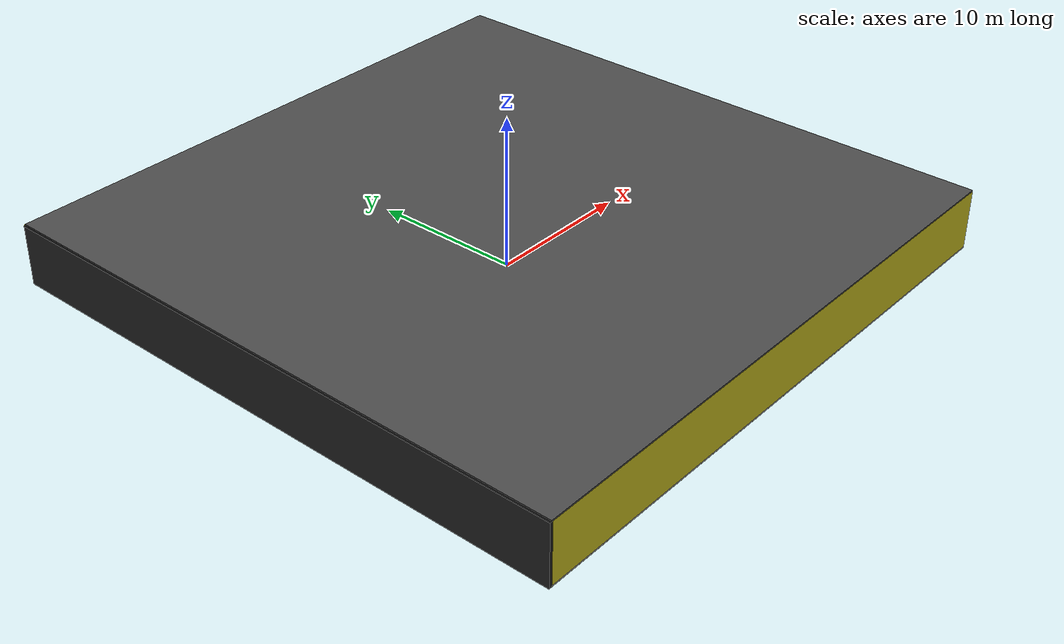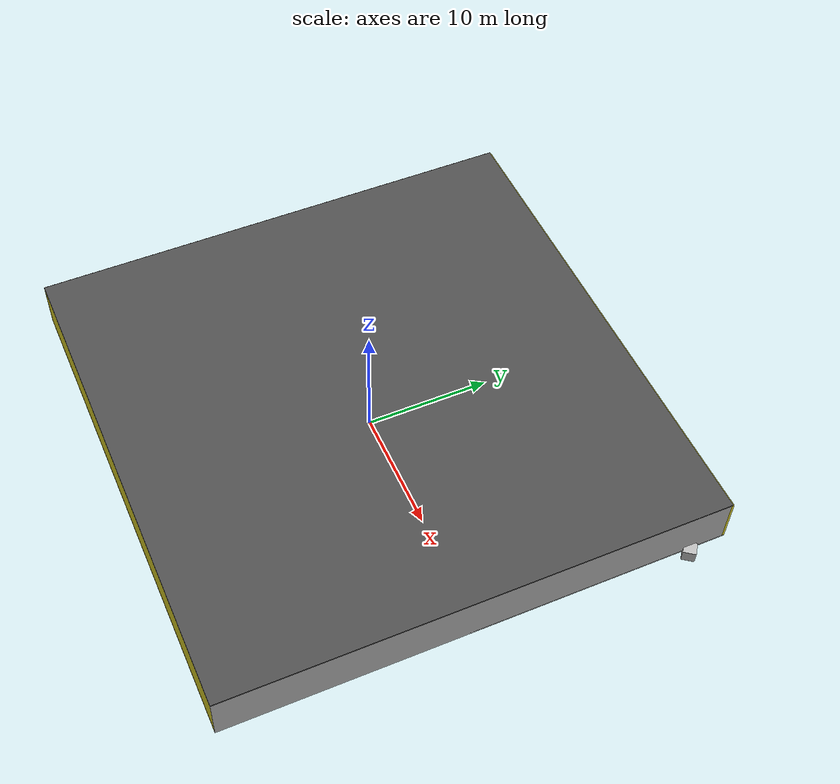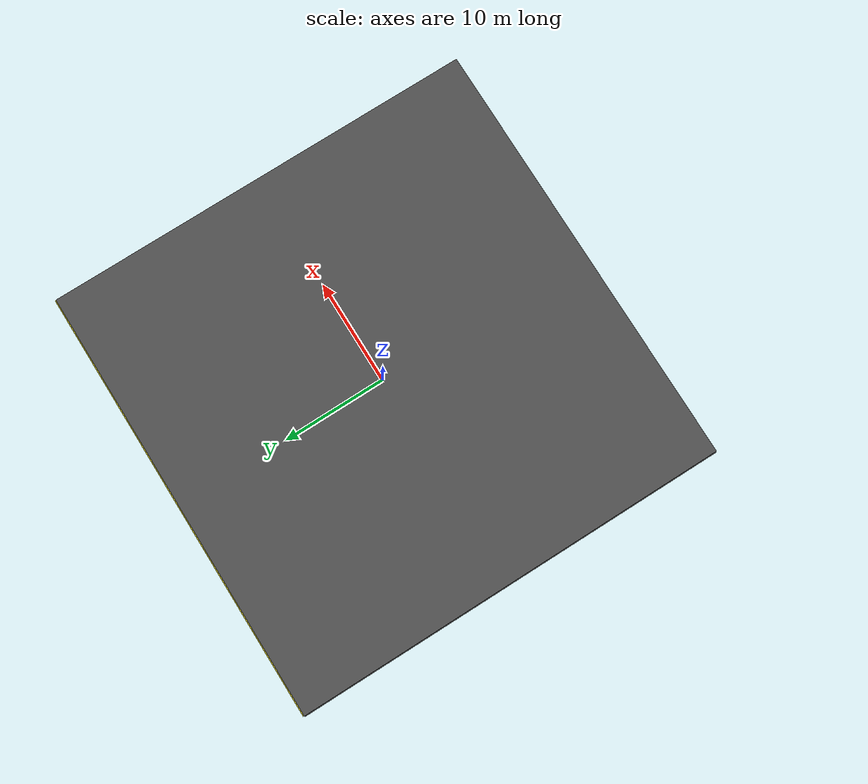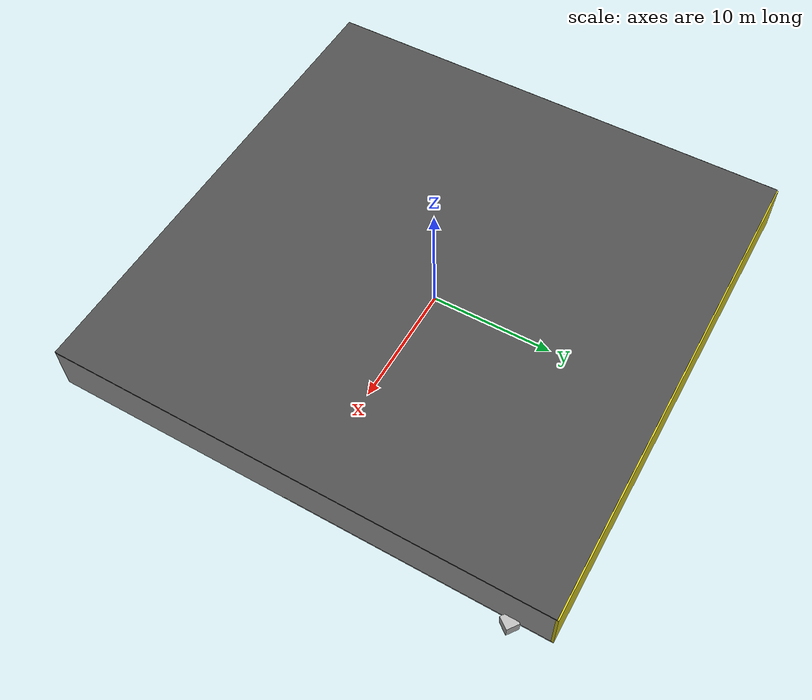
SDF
<sdf version="1.4">
 <world name="default">
  <physics type="ode">
   <max_step_size>0.001</max_step_size>
   <real_time_factor>1</real_time_factor>
   <real_time_update_rate>1000</real_time_update_rate>
   <gravity>0 0 -9.8</gravity>
  </physics>
  <scene><ambient>0.4 0.4 0.4 1</ambient><background>0.7 0.7 0.7 1</background><shadows>1</shadows></scene>
  <model name="Surrounding">
   <static>1</static>
   <link name="Ceiling">
    <collision name="Ceiling_Collision"><geometry><box><size>40 40 0.1</size></box></geometry></collision>
    <visual name="Ceiling_Visual">
     <geometry><box><size>40 40 0.1</size></box></geometry>
     <material>
      <script><uri>file://media/materials/scripts/gazebo.material</uri><name>Gazebo/Road</name></script>
     </material>
    </visual>
    <pose>0 0 4.05 0 0 0</pose>
   </link>
   <link name="Wall_South">
    <collision name="Wall_South_Collision">
     <geometry><box><size>40 0 4</size></box></geometry>
     <pose>0 0 2 0 -0 0</pose>
    </collision>
    <visual name="Wall_South_Visual">
     <pose>0 0 2 0 -0 0</pose>
     <geometry><box><size>40 0 4</size></box></geometry>
     <material>
      <script><uri>file://media/materials/scripts/gazebo.material</uri><name>Gazebo/Yellow</name></script>
     </material>
    </visual>
    <velocity_decay><linear>0</linear><angular>0</angular></velocity_decay>
    <pose>0 -20 0 0 -0 0</pose>
   </link>
   <link name="Wall_East">
    <collision name="Wall_21_Collision">
     <geometry><box><size>40 0 4</size></box></geometry>
     <pose>0 0 2 0 -0 0</pose>
    </collision>
    <visual name="Wall_21_Visual">
     <pose>0 0 2 0 -0 0</pose>
     <geometry><box><size>40 0 4</size></box></geometry>
     <material>
      <script><uri>file://media/materials/scripts/gazebo.material</uri><name>Gazebo/LightOn</name></script>
     </material>
    </visual>
    <velocity_decay><linear>0</linear><angular>0</angular></velocity_decay>
    <pose>20 0 0 0 -0 1.5708</pose>
   </link>
   <link name="Wall_North">
    <collision name="Wall_22_Collision">
     <geometry><box><size>40 0.2 4</size></box></geometry>
     <pose>0 0 2 0 -0 0</pose>
    </collision>
    <visual name="Wall_22_Visual">
     <pose>0 0 2 0 -0 0</pose>
     <geometry><box><size>40 0.2 4</size></box></geometry>
     <material>
      <script><uri>file://media/materials/scripts/gazebo.material</uri><name>Gazebo/Yellow</name></script>
     </material>
    </visual>
    <velocity_decay><linear>0</linear><angular>0</angular></velocity_decay>
    <pose>0 20 0 0 -0 0</pose>
   </link>
   <link name="Wall_West">
    <collision name="Wall_23_Collision">
     <geometry><box><size>40 0.2 4</size></box></geometry>
     <pose>0 0 2 0 -0 0</pose>
    </collision>
    <visual name="Wall_23_Visual">
     <pose>0 0 2 0 -0 0</pose>
     <geometry><box><size>40 0.2 4</size></box></geometry>
     <material>
      <script><uri>file://media/materials/scripts/gazebo.material</uri><name>Gazebo/FlatBlack</name></script>
     </material>
    </visual>
    <velocity_decay><linear>0</linear><angular>0</angular></velocity_decay>
    <pose>-20 0 0 0 0 -1.5708</pose>
   </link>
   <link name="Ground_link">
    <collision name="collision">
     <pose>0 0 .05 0 -0 0</pose>
     <geometry><box><size>40 40 0.1</size></box></geometry>
    </collision>
    <visual name="visual">
     <pose>0 0 .05 0 -0 0</pose>
     <geometry><box><size>40 40 0.1</size></box></geometry>
     <material>
      <script><uri>file://media/materials/scripts/gazebo.material</uri><name>Gazebo/LightOn</name></script>
     </material>
    </visual>
   </link>
   <static>1</static>
  </model>
  <spherical_coordinates>
   <surface_model>EARTH_WGS84</surface_model>
   <latitude_deg>0</latitude_deg>
   <longitude_deg>0</longitude_deg>
   <elevation>0</elevation>
   <heading_deg>0</heading_deg>
  </spherical_coordinates>
  <light name="lightball_0" type="diffuse">
   <diffuse>0.8 0.8 0.8 1</diffuse>
   <specular>0.2 0.2 0.2 1</specular>
   <attenuation>
    <range>100</range>
    <constant>0.7</constant>
    <linear>0.01</linear>
    <quadratic>0.001</quadratic>
   </attenuation>
   <direction>-0.5 0.1 -0.9</direction>
   <pose>-12.4035198364 -11.8601768112 1.06392769865 0 0 0</pose>
  </light>
  <light name="lightball_1" type="diffuse">
   <diffuse>0.8 0.8 0.8 1</diffuse>
   <specular>0.2 0.2 0.2 1</specular>
   <attenuation>
    <range>100</range>
    <constant>0.7</constant>
    <linear>0.01</linear>
    <quadratic>0.001</quadratic>
   </attenuation>
   <direction>-0.5 0.1 -0.9</direction>
   <pose>3.62792353886 10.4317852483 2.68110657082 0 0 0</pose>
  </light>
  <light name="lightball_2" type="diffuse">
   <diffuse>0.8 0.8 0.8 1</diffuse>
   <specular>0.2 0.2 0.2 1</specular>
   <attenuation>
    <range>100</range>
    <constant>0.7</constant>
    <linear>0.01</linear>
    <quadratic>0.001</quadratic>
   </attenuation>
   <direction>-0.5 0.1 -0.9</direction>
   <pose>10.8369199968 3.02195217835 2.08632798472 0 0 0</pose>
  </light>
  <light name="lightball_3" type="diffuse">
   <diffuse>0.8 0.8 0.8 1</diffuse>
   <specular>0.2 0.2 0.2 1</specular>
   <attenuation>
    <range>100</range>
    <constant>0.7</constant>
    <linear>0.01</linear>
    <quadratic>0.001</quadratic>
   </attenuation>
   <direction>-0.5 0.1 -0.9</direction>
   <pose>0.49191993805 15.6078740085 2.69207868374 0 0 0</pose>
  </light>
  <light name="lightball_4" type="diffuse">
   <diffuse>0.8 0.8 0.8 1</diffuse>
   <specular>0.2 0.2 0.2 1</specular>
   <attenuation>
    <range>100</range>
    <constant>0.7</constant>
    <linear>0.01</linear>
    <quadratic>0.001</quadratic>
   </attenuation>
   <direction>-0.5 0.1 -0.9</direction>
   <pose>-8.13380269436 10.7914858113 2.92471622286 0 0 0</pose>
  </light>
  <light name="lightball_5" type="diffuse">
   <diffuse>0.8 0.8 0.8 1</diffuse>
   <specular>0.2 0.2 0.2 1</specular>
   <attenuation>
    <range>100</range>
    <constant>0.7</constant>
    <linear>0.01</linear>
    <quadratic>0.001</quadratic>
   </attenuation>
   <direction>-0.5 0.1 -0.9</direction>
   <pose>8.04112071544 14.7328171042 3.43754292922 0 0 0</pose>
  </light>
  <light name="lightball_6" type="diffuse">
   <diffuse>0.8 0.8 0.8 1</diffuse>
   <specular>0.2 0.2 0.2 1</specular>
   <attenuation>
    <range>100</range>
    <constant>0.7</constant>
    <linear>0.01</linear>
    <quadratic>0.001</quadratic>
   </attenuation>
   <direction>-0.5 0.1 -0.9</direction>
   <pose>-0.07673185982 -11.3787701628 0.973053433584 0 0 0</pose>
  </light>
  <light name="lightball_7" type="diffuse">
   <diffuse>0.8 0.8 0.8 1</diffuse>
   <specular>0.2 0.2 0.2 1</specular>
   <attenuation>
    <range>100</range>
    <constant>0.7</constant>
    <linear>0.01</linear>
    <quadratic>0.001</quadratic>
   </attenuation>
   <direction>-0.5 0.1 -0.9</direction>
   <pose>-19.5754049884 -5.17421076067 1.74677906143 0 0 0</pose>
  </light>
  <light name="lightball_8" type="diffuse">
   <diffuse>0.8 0.8 0.8 1</diffuse>
   <specular>0.2 0.2 0.2 1</specular>
   <attenuation>
    <range>100</range>
    <constant>0.7</constant>
    <linear>0.01</linear>
    <quadratic>0.001</quadratic>
   </attenuation>
   <direction>-0.5 0.1 -0.9</direction>
   <pose>1.36395577892 -14.2864149072 1.95723812701 0 0 0</pose>
  </light>
  <light name="lightball_9" type="diffuse">
   <diffuse>0.8 0.8 0.8 1</diffuse>
   <specular>0.2 0.2 0.2 1</specular>
   <attenuation>
    <range>100</range>
    <constant>0.7</constant>
    <linear>0.01</linear>
    <quadratic>0.001</quadratic>
   </attenuation>
   <direction>-0.5 0.1 -0.9</direction>
   <pose>1.41313315472 17.9711445758 2.63787019311 0 0 0</pose>
  </light>
  <light name="lightball_10" type="diffuse">
   <diffuse>0.8 0.8 0.8 1</diffuse>
   <specular>0.2 0.2 0.2 1</specular>
   <attenuation>
    <range>100</range>
    <constant>0.7</constant>
    <linear>0.01</linear>
    <quadratic>0.001</quadratic>
   </attenuation>
   <direction>-0.5 0.1 -0.9</direction>
   <pose>7.88003319621 -12.919975278 0.60561382854 0 0 0</pose>
  </light>
  <light name="lightball_11" type="diffuse">
   <diffuse>0.8 0.8 0.8 1</diffuse>
   <specular>0.2 0.2 0.2 1</specular>
   <attenuation>
    <range>100</range>
    <constant>0.7</constant>
    <linear>0.01</linear>
    <quadratic>0.001</quadratic>
   </attenuation>
   <direction>-0.5 0.1 -0.9</direction>
   <pose>-6.18507909041 -17.7958777131 1.51674267354 0 0 0</pose>
  </light>
  <light name="lightball_12" type="diffuse">
   <diffuse>0.8 0.8 0.8 1</diffuse>
   <specular>0.2 0.2 0.2 1</specular>
   <attenuation>
    <range>100</range>
    <constant>0.7</constant>
    <linear>0.01</linear>
    <quadratic>0.001</quadratic>
   </attenuation>
   <direction>-0.5 0.1 -0.9</direction>
   <pose>-11.1012360811 0.323488478139 2.81135798234 0 0 0</pose>
  </light>
  <light name="lightball_13" type="diffuse">
   <diffuse>0.8 0.8 0.8 1</diffuse>
   <specular>0.2 0.2 0.2 1</specular>
   <attenuation>
    <range>100</range>
    <constant>0.7</constant>
    <linear>0.01</linear>
    <quadratic>0.001</quadratic>
   </attenuation>
   <direction>-0.5 0.1 -0.9</direction>
   <pose>-17.1086383683 7.17981958751 2.0703684678 0 0 0</pose>
  </light>
  <include><uri>model://table</uri><pose>-16.533718237 14.8658084919 0 0 0 0.149873350094</pose></include>
  <include>
   <uri>model://construction_cone</uri>
   <pose>-14.9876941489 -10.9634612066 0 0 0 1.31369790808</pose>
  </include>
  <include>
   <uri>model://robocup_3Dsim_goal</uri>
   <pose>-14.6234578473 15.324447077 0 0 0 3.01552536247</pose>
  </include>
  <include>
   <uri>model://robocup_3Dsim_goal</uri>
   <pose>-11.3049424058 -9.56417616459 0 0 0 0.138348623807</pose>
  </include>
  <include><uri>model://cabinet</uri><pose>-8.7032545631 -17.0927965969 0 0 0 2.78199722057</pose></include>
  <include>
   <uri>model://robocup_3Dsim_goal</uri>
   <pose>-7.95744012889 -15.2163666366 0 0 0 3.01810020795</pose>
  </include>
  <include>
   <uri>model://construction_cone</uri>
   <pose>-7.99568293586 -5.54545175098 0 0 0 2.63366197633</pose>
  </include>
  <include><uri>model://cabinet</uri><pose>-9.13232028732 13.0914330809 0 0 0 0.0145140939593</pose></include>
  <include><uri>model://table</uri><pose>-5.15564800481 -12.2675645673 0 0 0 1.99839692</pose></include>
  <include>
   <uri>model://construction_cone</uri>
   <pose>-6.50521295963 10.1392084644 0 0 0 1.04391531195</pose>
  </include>
  <include><uri>model://table</uri><pose>-2.44057588656 1.54105293929 0 0 0 1.62085503387</pose></include>
  <include>
   <uri>model://robocup_3Dsim_goal</uri>
   <pose>-3.15579132338 11.4931623335 0 0 0 3.02211508324</pose>
  </include>
  <include><uri>model://cabinet</uri><pose>-3.6227298435 17.9448414354 0 0 0 0.82199575712</pose></include>
  <include>
   <uri>model://construction_cone</uri>
   <pose>0.418905501916 -13.7178750012 0 0 0 2.34822711829</pose>
  </include>
  <include>
   <uri>model://textured_shapes</uri>
   <pose>0.399155041941 -12.0263092429 0 0 0 1.88437857255</pose>
  </include>
  <include><uri>model://table</uri><pose>-0.105585304885 7.64936237263 0 0 0 3.00753472539</pose></include>
  <include><uri>model://cabinet</uri><pose>2.40647578998 -15.2388002866 0 0 0 1.25257417785</pose></include>
  <include>
   <uri>model://construction_cone</uri>
   <pose>7.00663358688 -4.46889468887 0 0 0 1.13620510722</pose>
  </include>
  <include>
   <uri>model://robocup_3Dsim_goal</uri>
   <pose>6.9173827964 5.79890148 0 0 0 2.68725198956</pose>
  </include>
  <include><uri>model://cabinet</uri><pose>10.4702761107 -3.44821696292 0 0 0 2.14733253819</pose></include>
  <include>
   <uri>model://textured_shapes</uri>
   <pose>10.3350649322 11.5023886197 0 0 0 2.40605975436</pose>
  </include>
  <include>
   <uri>model://textured_shapes</uri>
   <pose>19.3060652194 15.8014126265 0 0 0 2.50289661933</pose>
  </include>
 </world>
</sdf>

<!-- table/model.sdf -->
<sdf version="1.5">
  <model name="table">
    <static>true</static>
    <link name="link">
      <collision name="surface">
        <pose>0 0 1.0 0 0 0</pose>
        <geometry>
          <box>
            <size>1.5 0.8 0.03</size>
          </box>
        </geometry>
        <surface>
          <friction>
            <ode>
              <mu>0.6</mu>
              <mu2>0.6</mu2>
            </ode>
          </friction>
        </surface>
      </collision>
      <visual name="visual1">
        <pose>0 0 1.0 0 0 0</pose>
        <geometry>
          <box>
            <size>1.5 0.8 0.03</size>
          </box>
        </geometry>
        <material>
          <script>
            <uri>model://media/materials/scripts/gazebo.material</uri>
            <name>Gazebo/Wood</name>
          </script>
        </material>
      </visual>
      <collision name="front_left_leg">
        <pose>0.68 0.38 0.5 0 0 0</pose>
        <geometry>
          <cylinder>
            <radius>0.02</radius>
            <length>1.0</length>
          </cylinder>
        </geometry>
      </collision>
      <visual name="front_left_leg">
        <pose>0.68 0.38 0.5 0 0 0</pose>
        <geometry>
          <cylinder>
            <radius>0.02</radius>
            <length>1.0</length>
          </cylinder>
        </geometry>
        <material>
          <script>
            <uri>model://media/materials/scripts/gazebo.material</uri>
            <name>Gazebo/Grey</name>
          </script>
        </material>
      </visual>
      <collision name="front_right_leg">
        <pose>0.68 -0.38 0.5 0 0 0</pose>
        <geometry>
          <cylinder>
            <radius>0.02</radius>
            <length>1.0</length>
          </cylinder>
        </geometry>
      </collision>
      <visual name="front_right_leg">
        <pose>0.68 -0.38 0.5 0 0 0</pose>
        <geometry>
          <cylinder>
            <radius>0.02</radius>
            <length>1.0</length>
          </cylinder>
        </geometry>
        <material>
          <script>
            <uri>model://media/materials/scripts/gazebo.material</uri>
            <name>Gazebo/Grey</name>
          </script>
        </material>
      </visual>
      <collision name="back_right_leg">
        <pose>-0.68 -0.38 0.5 0 0 0</pose>
        <geometry>
          <cylinder>
            <radius>0.02</radius>
            <length>1.0</length>
          </cylinder>
        </geometry>
      </collision>
      <visual name="back_right_leg">
        <pose>-0.68 -0.38 0.5 0 0 0</pose>
        <geometry>
          <cylinder>
            <radius>0.02</radius>
            <length>1.0</length>
          </cylinder>
        </geometry>
        <material>
          <script>
            <uri>model://media/materials/scripts/gazebo.material</uri>
            <name>Gazebo/Grey</name>
          </script>
        </material>
      </visual>
      <collision name="back_left_leg">
        <pose>-0.68 0.38 0.5 0 0 0</pose>
        <geometry>
          <cylinder>
            <radius>0.02</radius>
            <length>1.0</length>
          </cylinder>
        </geometry>
      </collision>
      <visual name="back_left_leg">
        <pose>-0.68 0.38 0.5 0 0 0</pose>
        <geometry>
          <cylinder>
            <radius>0.02</radius>
            <length>1.0</length>
          </cylinder>
        </geometry>
        <material>
          <script>
            <uri>model://media/materials/scripts/gazebo.material</uri>
            <name>Gazebo/Grey</name>
          </script>
        </material>
      </visual>
    </link>
  </model>
</sdf>

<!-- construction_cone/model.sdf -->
<sdf version="1.5">
  <model name="Construction Cone">
    <link name="link">
      <collision name="collision">
        <geometry>
          <mesh>
            <scale>10 10 10</scale>
            <uri>file://isr-testbed/construction_cone/meshes/construction_cone.dae</uri>
          </mesh>
        </geometry>
      </collision>
      <visual name="visual">
        <geometry>
          <mesh>
            <scale>10 10 10</scale>
            <uri>file://isr-testbed/construction_cone/meshes/construction_cone.dae</uri>
          </mesh>
        </geometry>
      </visual>
    </link>
  </model>
</sdf>

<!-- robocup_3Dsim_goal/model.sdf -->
<sdf version="1.5">
  <model name="robocup_3d_goal">
    <static>true</static>
    <link name="left_post">
      <pose>0 1.05 0.45 0 0 0</pose>
      <collision name="collision">
        <geometry>
          <cylinder>
            <radius>0.05</radius>
            <length>0.9</length>
          </cylinder>
        </geometry>
      </collision>
      <visual name="visual">
        <geometry>
          <cylinder>
            <radius>0.05</radius>
            <length>0.9</length>
          </cylinder>
        </geometry>
        <material>
          <script>
            <uri>file://media/materials/scripts/gazebo.material</uri>
            <name>Gazebo/ZincYellow</name>
          </script>
        </material>
      </visual>
    </link>
    <link name="left_support_horiz_lower">
      <pose>0.30 1.05 0.01 0 0 0</pose>
      <collision name="collision">
        <geometry>
          <box>
            <size>0.50 0.02 0.02</size>
          </box>
        </geometry>
      </collision>
      <visual name="visual">
        <geometry>
          <box>
            <size>0.50 0.02 0.02</size>
          </box>
        </geometry>
        <material>
          <script>
            <uri>file://media/materials/scripts/gazebo.material</uri>
            <name>Gazebo/White</name>
          </script>
        </material>
      </visual>
    </link>
    <link name="left_support_horiz_upper">
      <pose>0.30 1.05 0.79 0 0 0</pose>
      <collision name="collision">
        <geometry>
          <box>
            <size>0.50 0.02 0.02</size>
          </box>
        </geometry>
      </collision>
      <visual name="visual">
        <geometry>
          <box>
            <size>0.50 0.02 0.02</size>
          </box>
        </geometry>
        <material>
          <script>
            <uri>file://media/materials/scripts/gazebo.material</uri>
            <name>Gazebo/White</name>
          </script>
        </material>
      </visual>
    </link>
    <link name="left_support_vertical">
      <pose>0.56 1.05 0.4 0 1.5708 0</pose>
      <collision name="collision">
        <geometry>
          <box>
            <size>0.80 0.02 0.02</size>
          </box>
        </geometry>
      </collision>
      <visual name="visual">
        <geometry>
          <box>
            <size>0.80 0.02 0.02</size>
          </box>
        </geometry>
        <material>
          <script>
            <uri>file://media/materials/scripts/gazebo.material</uri>
            <name>Gazebo/White</name>
          </script>
        </material>
      </visual>
    </link>
    <link name="right_support_horiz_lower">
      <pose>0.30 -1.05 0.01 0 0 0</pose>
      <collision name="collision">
        <geometry>
          <box>
            <size>0.50 0.02 0.02</size>
          </box>
        </geometry>
      </collision>
      <visual name="visual">
        <geometry>
          <box>
            <size>0.50 0.02 0.02</size>
          </box>
        </geometry>
        <material>
          <script>
            <uri>file://media/materials/scripts/gazebo.material</uri>
            <name>Gazebo/White</name>
          </script>
        </material>
      </visual>
    </link>
    <link name="right_support_horiz_upper">
      <pose>0.30 -1.05 0.79 0 0 0</pose>
      <collision name="collision">
        <geometry>
          <box>
            <size>0.50 0.02 0.02</size>
          </box>
        </geometry>
      </collision>
      <visual name="visual">
        <geometry>
          <box>
            <size>0.50 0.02 0.02</size>
          </box>
        </geometry>
        <material>
          <script>
            <uri>file://media/materials/scripts/gazebo.material</uri>
            <name>Gazebo/White</name>
          </script>
        </material>
      </visual>
    </link>
    <link name="right_support_vertical">
      <pose>0.56 -1.05 0.4 0 1.5708 0</pose>
      <collision name="collision">
        <geometry>
          <box>
            <size>0.80 0.02 0.02</size>
          </box>
        </geometry>
      </collision>
      <visual name="visual">
        <geometry>
          <box>
            <size>0.80 0.02 0.02</size>
          </box>
        </geometry>
        <material>
          <script>
            <uri>file://media/materials/scripts/gazebo.material</uri>
            <name>Gazebo/White</name>
          </script>
        </material>
      </visual>
    </link>
    <link name="center_support_horiz_lower">
      <pose>0.56 0 0.01 0 1.5708 0</pose>
      <collision name="collision">
        <geometry>
          <box>
            <size>0.02 2.08 0.02</size>
          </box>
        </geometry>
      </collision>
      <visual name="visual">
        <geometry>
          <box>
            <size>0.02 2.08 0.02</size>
          </box>
        </geometry>
        <material>
          <script>
            <uri>file://media/materials/scripts/gazebo.material</uri>
            <name>Gazebo/White</name>
          </script>
        </material>
      </visual>
    </link>
    <link name="center_support_horiz_upper">
      <pose>0.56 0 0.79 0 1.5708 0</pose>
      <collision name="collision">
        <geometry>
          <box>
            <size>0.02 2.08 0.02</size>
          </box>
        </geometry>
      </collision>
      <visual name="visual">
        <geometry>
          <box>
            <size>0.02 2.08 0.02</size>
          </box>
        </geometry>
        <material>
          <script>
            <uri>file://media/materials/scripts/gazebo.material</uri>
            <name>Gazebo/White</name>
          </script>
        </material>
      </visual>
    </link>
    <link name="right_post">
      <pose>0 -1.05 0.45 0 0 0</pose>
      <collision name="collision">
        <geometry>
          <cylinder>
            <radius>0.05</radius>
            <length>0.9</length>
          </cylinder>
        </geometry>
      </collision>
      <visual name="visual">
        <geometry>
          <cylinder>
            <radius>0.05</radius>
            <length>0.9</length>
          </cylinder>
        </geometry>
        <material>
          <script>
            <uri>file://media/materials/scripts/gazebo.material</uri>
            <name>Gazebo/ZincYellow</name>
          </script>
        </material>
      </visual>
    </link>
    <link name="crossbar">
      <pose>0 0 0.85 1.57 1.57 0</pose>
      <collision name="collision">
        <geometry>
          <cylinder>
            <radius>0.05</radius>
            <length>2.0</length>
          </cylinder>
        </geometry>
      </collision>
      <visual name="visual">
        <geometry>
          <cylinder>
            <radius>0.05</radius>
            <length>2.0</length>
          </cylinder>
        </geometry>
        <material>
          <script>
            <uri>file://media/materials/scripts/gazebo.material</uri>
            <name>Gazebo/ZincYellow</name>
          </script>
        </material>
      </visual>
    </link>
    <link name="center_net">
      <pose>0.56 0 0.40 0 0 0</pose>
      <collision name="collision">
        <geometry>
          <box>
            <size>0.01 2.1 0.80</size>
          </box>
        </geometry>
      </collision>
      <visual name="visual">
        <geometry>
          <box>
            <size>0.01 2.1 0.80</size>
          </box>
        </geometry>
        <material>
          <script>
            <uri>model://../model_source/models/robocup09_spl_field/materials/scripts/</uri>
            <uri>model://../model_source/models/robocup09_spl_field/materials/textures/</uri>
            <name>RoboCup/Net</name>
          </script>
        </material>
      </visual>
    </link>
    <link name="left_net">
      <pose>0.30 1.05 0.40 0 0 0</pose>
      <collision name="collision">
        <geometry>
          <box>
            <size>0.50 0.01 0.76</size>
          </box>
        </geometry>
      </collision>
      <visual name="visual">
        <geometry>
          <box>
            <size>0.50 0.01 0.76</size>
          </box>
        </geometry>
        <material>
          <script>
            <uri>model://../model_source/models/robocup09_spl_field/materials/scripts/</uri>
            <uri>model://../model_source/models/robocup09_spl_field/materials/textures/</uri>
            <name>RoboCup/Net</name>
          </script>
        </material>
      </visual>
    </link>
    <link name="right_net">
      <pose>0.30 -1.05 0.40 0 0 0</pose>
      <collision name="collision">
        <geometry>
          <box>
            <size>0.50 0.01 0.76</size>
          </box>
        </geometry>
      </collision>
      <visual name="visual">
        <geometry>
          <box>
            <size>0.50 0.01 0.76</size>
          </box>
        </geometry>
        <material>
          <script>
            <uri>model://../model_source/models/robocup09_spl_field/materials/scripts/</uri>
            <uri>model://../model_source/models/robocup09_spl_field/materials/textures/</uri>
            <name>RoboCup/Net</name>
          </script>
        </material>
      </visual>
    </link>
  </model>
</sdf>

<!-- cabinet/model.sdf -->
<sdf version="1.5">
  <model name="cabinet">
    <static>true</static>
    <link name="cabinet_bottom_plate">
      <inertial>
        <pose>0 0 -1 0 0 0</pose>
        <inertia>
          <ixx>2.050000</ixx>
          <ixy>0</ixy>
          <ixz>0</ixz>
          <iyy>2.050000</iyy>
          <iyz>0</iyz>
          <izz>2.050000</izz>
        </inertia>
        <mass>25.000000</mass>
      </inertial>
      <collision name="cabinet_bottom_plate_geom">
        <pose>0 0 0.010000 0 0 0</pose>
        <geometry>
          <box>
            <size>0.450000 0.450000 0.020000</size>
          </box>
        </geometry>
      </collision>
      <visual name="cabinet_bottom_plate_geom_visual">
        <pose>0 0 0.010000 0 0 0</pose>
        <geometry>
          <box>
            <size>0.450000 0.450000 0.020000</size>
          </box>
        </geometry>
        <material>
          <script>
            <uri>model://media/materials/scripts/gazebo.material</uri>
            <name>Gazebo/Wood</name>
          </script>
        </material>
      </visual>
      <collision name="cabinet_bottom_plate_geom_cabinet_back_plate">
        <pose>0.235000 0 0.510000 0 0 0</pose>
        <geometry>
          <box>
            <size>0.020000 0.450000 1.020000</size>
          </box>
        </geometry>
      </collision>
      <visual name="cabinet_bottom_plate_geom_cabinet_back_plate_visual">
        <pose>0.235000 0 0.510000 0 0 0</pose>
        <geometry>
          <box>
            <size>0.020000 0.450000 1.020000</size>
          </box>
        </geometry>
        <material>
          <script>
            <uri>model://media/materials/scripts/gazebo.material</uri>
            <name>Gazebo/Wood</name>
          </script>
        </material>
      </visual>
      <collision name="cabinet_bottom_plate_geom_cabinet_left_plate">
        <pose>0 0.235000 0.510000 0 0 0</pose>
        <geometry>
          <box>
            <size>0.450000 0.020000 1.020000</size>
          </box>
        </geometry>
      </collision>
      <visual name="cabinet_bottom_plate_geom_cabinet_left_plate_visual">
        <pose>0 0.235000 0.510000 0 0 0</pose>
        <geometry>
          <box>
            <size>0.450000 0.020000 1.020000</size>
          </box>
        </geometry>
        <material>
          <script>
            <uri>model://media/materials/scripts/gazebo.material</uri>
            <name>Gazebo/Wood</name>
          </script>
        </material>
      </visual>
      <collision name="cabinet_bottom_plate_geom_cabinet_middle_plate">
        <pose>0 0 0.510000 0 0 0</pose>
        <geometry>
          <box>
            <size>0.450000 0.450000 0.020000</size>
          </box>
        </geometry>
      </collision>
      <visual name="cabinet_bottom_plate_geom_cabinet_middle_plate_visual">
        <pose>0 0 0.510000 0 0 0</pose>
        <geometry>
          <box>
            <size>0.450000 0.450000 0.020000</size>
          </box>
        </geometry>
        <material>
          <script>
            <uri>model://media/materials/scripts/gazebo.material</uri>
            <name>Gazebo/Wood</name>
          </script>
        </material>
      </visual>
      <collision name="cabinet_bottom_plate_geom_cabinet_right_plate">
        <pose>0 -0.235000 0.510000 0 0 0</pose>
        <geometry>
          <box>
            <size>0.450000 0.020000 1.020000</size>
          </box>
        </geometry>
      </collision>
      <visual name="cabinet_bottom_plate_geom_cabinet_right_plate_visual">
        <pose>0 -0.235000 0.510000 0 0 0</pose>
        <geometry>
          <box>
            <size>0.450000 0.020000 1.020000</size>
          </box>
        </geometry>
        <material>
          <script>
            <uri>model://media/materials/scripts/gazebo.material</uri>
            <name>Gazebo/Wood</name>
          </script>
        </material>
      </visual>
      <collision name="cabinet_bottom_plate_geom_cabinet_top_plate">
        <pose>0 0 1.010000 0 0 0</pose>
        <geometry>
          <box>
            <size>0.450000 0.450000 0.020000</size>
          </box>
        </geometry>
      </collision>
      <visual name="cabinet_bottom_plate_geom_cabinet_top_plate_visual">
        <pose>0 0 1.010000 0 0 0</pose>
        <geometry>
          <box>
            <size>0.450000 0.450000 0.020000</size>
          </box>
        </geometry>
        <material>
          <script>
            <uri>model://media/materials/scripts/gazebo.material</uri>
            <name>Gazebo/Wood</name>
          </script>
        </material>
      </visual>
    </link>
  </model>
</sdf>

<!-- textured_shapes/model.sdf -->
<sdf version="1.6">
  <model name="textured_shapes">
    <pose>0 0 0.5 0 0 0</pose>
    <link name="box">
      <pose>0 -1.5 0 0 0 0</pose>
      <collision name="collision">
        <geometry>
          <box>
            <size>1 1 1</size>
          </box>
        </geometry>
      </collision>
      <visual name="visual">
        <geometry>
          <box>
            <size>1 1 1</size>
          </box>
        </geometry>
        <material>
          <script>
            <uri>model://../model_source/models/textured_shapes/materials/scripts</uri>
            <uri>model://../model_source/models/textured_shapes/materials/textures</uri>
            <name>TexturedShape/Squares</name>
          </script>
        </material>
      </visual>
    </link>
    <link name="sphere">
      <collision name="collision">
        <geometry>
          <sphere>
            <radius>0.5</radius>
          </sphere>
        </geometry>
      </collision>
      <visual name="visual">
        <geometry>
          <sphere>
            <radius>0.5</radius>
          </sphere>
        </geometry>
        <material>
          <script>
            <uri>model://../model_source/models/textured_shapes/materials/scripts</uri>
            <uri>model://../model_source/models/textured_shapes/materials/textures</uri>
            <name>TexturedShape/Squares</name>
          </script>
        </material>
      </visual>
    </link>
    <link name="cylinder">
      <pose>0 1.5 0 0 0 0</pose>
      <collision name="collision">
        <geometry>
          <cylinder>
            <radius>0.5</radius>
            <length>1</length>
          </cylinder>
        </geometry>
      </collision>
      <visual name="visual">
        <geometry>
          <cylinder>
            <radius>0.5</radius>
            <length>1</length>
          </cylinder>
        </geometry>
        <material>
          <script>
            <uri>model://../model_source/models/textured_shapes/materials/scripts</uri>
            <uri>model://../model_source/models/textured_shapes/materials/textures</uri>
            <name>TexturedShape/Squares</name>
          </script>
        </material>
      </visual>
    </link>
  </model>
</sdf>
